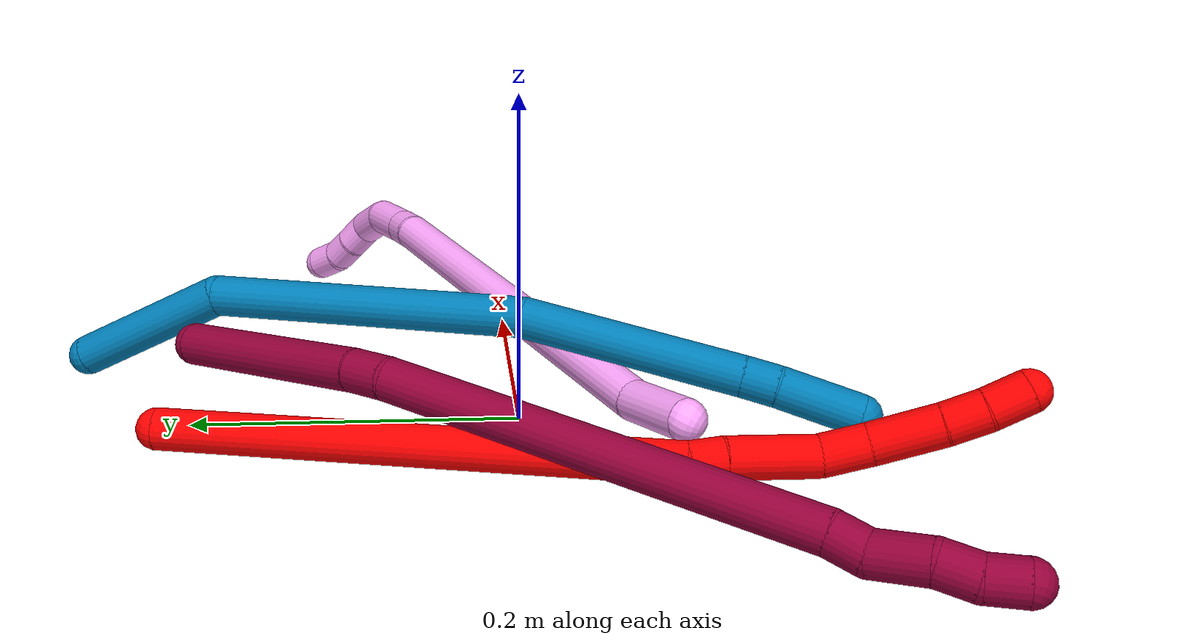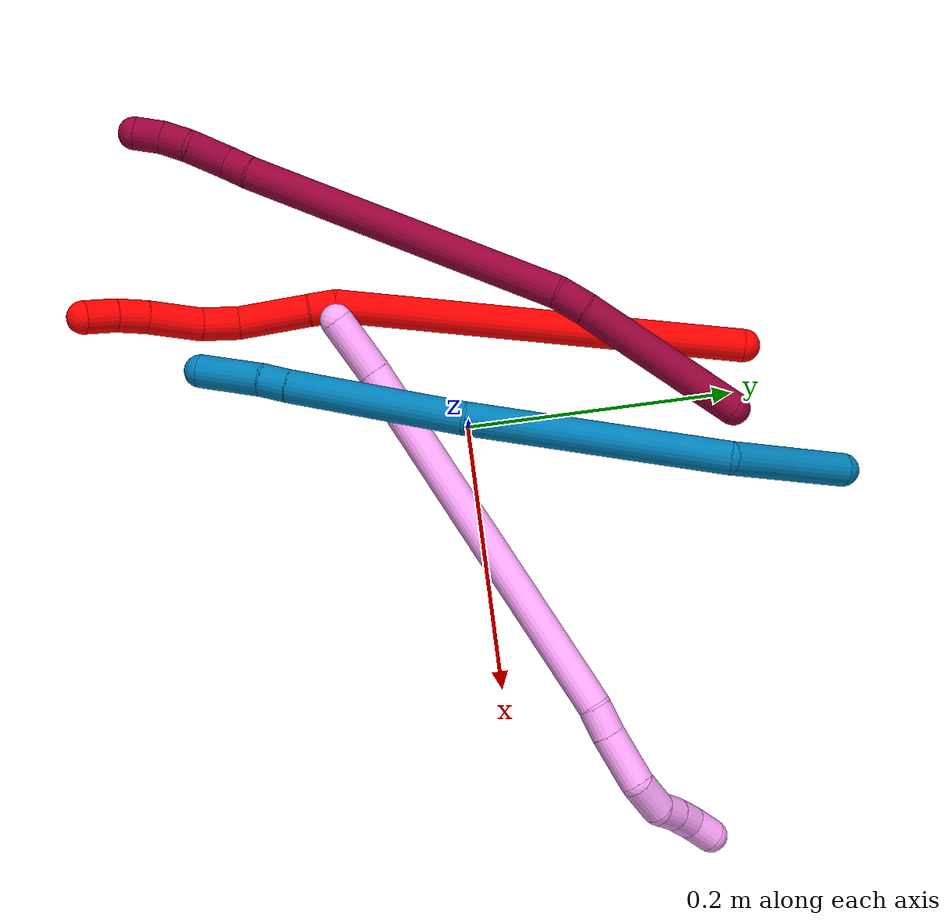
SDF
<sdf version="1.7">
 <world name="default">
  <model name="photoneo_s_sensor">
   <static>1</static>
   <pose>0 0 2 1.57079 1.57079 3.14159</pose>
   <link name="link">
    <inertial><mass>0.1</mass></inertial>
    <sensor name="sensor" type="depth">
     <update_rate>30</update_rate>
     <camera>
      <horizontal_fov>1.22</horizontal_fov>
      <image><width>1920</width><height>1200</height><format>B8G8R8</format></image>
      <clip><near>0.1</near><far>4</far></clip>
      <depth_camera><output>points</output></depth_camera>
     </camera>
     <plugin name="camera_plugin" filename="libgazebo_ros_depth_camera.so">
      <baseline>0.2</baseline>
      <alwaysOn>1</alwaysOn>
      <updateRate>0.0</updateRate>
      <cameraName>camera_ir</cameraName>
      <imageTopicName>/camera/color/image_raw</imageTopicName>
      <cameraInfoTopicName>/camera/color/camera_info</cameraInfoTopicName>
      <depthImageTopicName>/camera/depth/image_raw</depthImageTopicName>
      <depthImageCameraInfoTopicName>/camera/depth/camera_info</depthImageCameraInfoTopicName>
      <pointCloudTopicName>/camera/depth/points</pointCloudTopicName>
      <frameName>fr_optical</frameName>
      <pointCloudCutoff>0.1</pointCloudCutoff>
      <pointCloudCutoffMax>2.0</pointCloudCutoffMax>
      <distortionK1>0</distortionK1>
      <distortionK2>0</distortionK2>
      <distortionK3>0</distortionK3>
      <distortionT1>0</distortionT1>
      <distortionT2>0</distortionT2>
      <CxPrime>0</CxPrime>
      <Cx>0</Cx>
      <Cy>0</Cy>
      <focalLength>0</focalLength>
      <hackBaseline>0</hackBaseline>
     </plugin>
    </sensor>
   </link>
  </model>
  <model name="bin">
   <static>1</static>
   <link name="bottom">
    <collision name="collision-bottom">
     <pose>0 0 -0.01 0 -0 0</pose>
     <geometry><box><size>0.8 0.6 0.02</size></box></geometry>
     <surface>
      <friction><ode><mu>100</mu><mu2>100</mu2></ode></friction>
      <contact><collide_bitmask>65535</collide_bitmask></contact>
     </surface>
    </collision>
   </link>
   <link name="west_wall">
    <collision name="collision-west_wall">
     <pose>-0.41 0 0.1 0 -0 0</pose>
     <geometry><box><size>0.02 0.6 0.2</size></box></geometry>
     <surface>
      <friction><ode><mu>100</mu><mu2>100</mu2></ode></friction>
      <contact><collide_bitmask>65535</collide_bitmask></contact>
     </surface>
    </collision>
   </link>
   <link name="east_wall">
    <collision name="collision-east_wall">
     <pose>0.41 0 0.1 0 -0 0</pose>
     <geometry><box><size>0.02 0.6 0.2</size></box></geometry>
     <surface>
      <friction><ode><mu>100</mu><mu2>100</mu2></ode></friction>
      <contact><collide_bitmask>65535</collide_bitmask></contact>
     </surface>
    </collision>
   </link>
   <link name="south_wall">
    <collision name="collision-south_wall">
     <pose>0 -0.31 0.1 0 -0 0</pose>
     <geometry><box><size>0.8 0.02 0.2</size></box></geometry>
     <surface>
      <friction><ode><mu>100</mu><mu2>100</mu2></ode></friction>
      <contact><collide_bitmask>65535</collide_bitmask></contact>
     </surface>
    </collision>
   </link>
   <link name="north_wall">
    <collision name="collision-north_wall">
     <pose>0 0.31 0.1 0 -0 0</pose>
     <geometry><box><size>0.8 0.02 0.2</size></box></geometry>
     <surface>
      <friction><ode><mu>100</mu><mu2>100</mu2></ode></friction>
      <contact><collide_bitmask>65535</collide_bitmask></contact>
     </surface>
    </collision>
   </link>
  </model>
  <model name="2">
   <static>0</static>
   <link name="2">
    <collision name="collision-cylinder-e_1_1_4">
     <pose>-0.011529 -0.083276 0.1289 0.573593 -0.074985 -0.022125</pose>
     <geometry><cylinder><radius>0.0125</radius><length>0.307785</length></cylinder></geometry>
     <surface>
      <friction><ode><mu>1.16</mu><mu2>1.16</mu2><slip1>0</slip1><slip2>0</slip2></ode></friction>
      <contact><ode><kp>1e+06</kp><kd>1</kd><max_vel>0</max_vel><min_depth>0.001</min_depth></ode></contact>
     </surface>
    </collision>
    <visual name="visual-cylinder-e_1_1_4">
     <pose>-0.011529 -0.083276 0.1289 0.573593 -0.074985 -0.022125</pose>
     <geometry><cylinder><radius>0.0125</radius><length>0.307785</length></cylinder></geometry>
     <material><ambient>1 0 0 1</ambient></material>
    </visual>
    <collision name="collision-cylinder-e_2_4_5">
     <pose>-0.024218 -0.174203 0.26436 0.862022 -0.114658 -0.052771</pose>
     <geometry><cylinder><radius>0.0125</radius><length>0.020292</length></cylinder></geometry>
     <surface>
      <friction><ode><mu>1.16</mu><mu2>1.16</mu2><slip1>0</slip1><slip2>0</slip2></ode></friction>
      <contact><ode><kp>1e+06</kp><kd>1</kd><max_vel>0</max_vel><min_depth>0.001</min_depth></ode></contact>
     </surface>
    </collision>
    <visual name="visual-cylinder-e_2_4_5">
     <pose>-0.024218 -0.174203 0.26436 0.862022 -0.114658 -0.052771</pose>
     <geometry><cylinder><radius>0.0125</radius><length>0.020292</length></cylinder></geometry>
     <material><ambient>1 0 0 1</ambient></material>
    </visual>
    <collision name="collision-cylinder-e_3_5_6">
     <pose>-0.031299 -0.200686 0.288983 0.806259 -0.223081 -0.095465</pose>
     <geometry><cylinder><radius>0.0125</radius><length>0.053513</length></cylinder></geometry>
     <surface>
      <friction><ode><mu>1.16</mu><mu2>1.16</mu2><slip1>0</slip1><slip2>0</slip2></ode></friction>
      <contact><ode><kp>1e+06</kp><kd>1</kd><max_vel>0</max_vel><min_depth>0.001</min_depth></ode></contact>
     </surface>
    </collision>
    <visual name="visual-cylinder-e_3_5_6">
     <pose>-0.031299 -0.200686 0.288983 0.806259 -0.223081 -0.095465</pose>
     <geometry><cylinder><radius>0.0125</radius><length>0.053513</length></cylinder></geometry>
     <material><ambient>1 0 0 1</ambient></material>
    </visual>
    <collision name="collision-cylinder-e_4_6_7">
     <pose>-0.036071 -0.230072 0.31674 0.82777 0.079874 0.0351</pose>
     <geometry><cylinder><radius>0.0125</radius><length>0.028755</length></cylinder></geometry>
     <surface>
      <friction><ode><mu>1.16</mu><mu2>1.16</mu2><slip1>0</slip1><slip2>0</slip2></ode></friction>
      <contact><ode><kp>1e+06</kp><kd>1</kd><max_vel>0</max_vel><min_depth>0.001</min_depth></ode></contact>
     </surface>
    </collision>
    <visual name="visual-cylinder-e_4_6_7">
     <pose>-0.036071 -0.230072 0.31674 0.82777 0.079874 0.0351</pose>
     <geometry><cylinder><radius>0.0125</radius><length>0.028755</length></cylinder></geometry>
     <material><ambient>1 0 0 1</ambient></material>
    </visual>
    <collision name="collision-cylinder-e_5_7_8">
     <pose>-0.02987 -0.254116 0.341417 0.733045 0.245627 0.094695</pose>
     <geometry><cylinder><radius>0.0125</radius><length>0.041565</length></cylinder></geometry>
     <surface>
      <friction><ode><mu>1.16</mu><mu2>1.16</mu2><slip1>0</slip1><slip2>0</slip2></ode></friction>
      <contact><ode><kp>1e+06</kp><kd>1</kd><max_vel>0</max_vel><min_depth>0.001</min_depth></ode></contact>
     </surface>
    </collision>
    <visual name="visual-cylinder-e_5_7_8">
     <pose>-0.02987 -0.254116 0.341417 0.733045 0.245627 0.094695</pose>
     <geometry><cylinder><radius>0.0125</radius><length>0.041565</length></cylinder></geometry>
     <material><ambient>1 0 0 1</ambient></material>
    </visual>
    <collision name="collision-cylinder-e_6_8_9">
     <pose>-0.02197 -0.276012 0.364135 0.826941 0.24418 0.107569</pose>
     <geometry><cylinder><radius>0.0125</radius><length>0.02355</length></cylinder></geometry>
     <surface>
      <friction><ode><mu>1.16</mu><mu2>1.16</mu2><slip1>0</slip1><slip2>0</slip2></ode></friction>
      <contact><ode><kp>1e+06</kp><kd>1</kd><max_vel>0</max_vel><min_depth>0.001</min_depth></ode></contact>
     </surface>
    </collision>
    <visual name="visual-cylinder-e_6_8_9">
     <pose>-0.02197 -0.276012 0.364135 0.826941 0.24418 0.107569</pose>
     <geometry><cylinder><radius>0.0125</radius><length>0.02355</length></cylinder></geometry>
     <material><ambient>1 0 0 1</ambient></material>
    </visual>
    <collision name="collision-cylinder-e_7_9_2">
     <pose>-0.016371 -0.294197 0.378755 0.957333 0.226179 0.117735</pose>
     <geometry><cylinder><radius>0.0125</radius><length>0.02454</length></cylinder></geometry>
     <surface>
      <friction><ode><mu>1.16</mu><mu2>1.16</mu2><slip1>0</slip1><slip2>0</slip2></ode></friction>
      <contact><ode><kp>1e+06</kp><kd>1</kd><max_vel>0</max_vel><min_depth>0.001</min_depth></ode></contact>
     </surface>
    </collision>
    <visual name="visual-cylinder-e_7_9_2">
     <pose>-0.016371 -0.294197 0.378755 0.957333 0.226179 0.117735</pose>
     <geometry><cylinder><radius>0.0125</radius><length>0.02454</length></cylinder></geometry>
     <material><ambient>1 0 0 1</ambient></material>
    </visual>
    <collision name="collision-sphere-2">
     <pose>-0.01362 -0.303974 0.385639 0 -0 0</pose>
     <geometry><sphere><radius>0.0125</radius></sphere></geometry>
     <surface>
      <friction><ode><mu>1.16</mu><mu2>1.16</mu2><slip1>0</slip1><slip2>0</slip2></ode></friction>
      <contact><ode><kp>1e+06</kp><kd>1</kd><max_vel>0</max_vel><min_depth>0.001</min_depth></ode></contact>
     </surface>
    </collision>
    <visual name="visual-sphere-2">
     <pose>-0.01362 -0.303974 0.385639 0 -0 0</pose>
     <geometry><sphere><radius>0.0125</radius></sphere></geometry>
     <material><ambient>1 0 0 1</ambient></material>
    </visual>
    <collision name="collision-sphere-9">
     <pose>-0.019123 -0.28442 0.371872 0 -0 0</pose>
     <geometry><sphere><radius>0.0125</radius></sphere></geometry>
     <surface>
      <friction><ode><mu>1.16</mu><mu2>1.16</mu2><slip1>0</slip1><slip2>0</slip2></ode></friction>
      <contact><ode><kp>1e+06</kp><kd>1</kd><max_vel>0</max_vel><min_depth>0.001</min_depth></ode></contact>
     </surface>
    </collision>
    <visual name="visual-sphere-9">
     <pose>-0.019123 -0.28442 0.371872 0 -0 0</pose>
     <geometry><sphere><radius>0.0125</radius></sphere></geometry>
     <material><ambient>1 0 0 1</ambient></material>
    </visual>
    <collision name="collision-sphere-4">
     <pose>-0.023058 -0.166551 0.2578 0 -0 0</pose>
     <geometry><sphere><radius>0.0125</radius></sphere></geometry>
     <surface>
      <friction><ode><mu>1.16</mu><mu2>1.16</mu2><slip1>0</slip1><slip2>0</slip2></ode></friction>
      <contact><ode><kp>1e+06</kp><kd>1</kd><max_vel>0</max_vel><min_depth>0.001</min_depth></ode></contact>
     </surface>
    </collision>
    <visual name="visual-sphere-4">
     <pose>-0.023058 -0.166551 0.2578 0 -0 0</pose>
     <geometry><sphere><radius>0.0125</radius></sphere></geometry>
     <material><ambient>1 0 0 1</ambient></material>
    </visual>
    <collision name="collision-sphere-1">
     <geometry><sphere><radius>0.0125</radius></sphere></geometry>
     <surface>
      <friction><ode><mu>1.16</mu><mu2>1.16</mu2><slip1>0</slip1><slip2>0</slip2></ode></friction>
      <contact><ode><kp>1e+06</kp><kd>1</kd><max_vel>0</max_vel><min_depth>0.001</min_depth></ode></contact>
     </surface>
    </collision>
    <visual name="visual-sphere-1">
     <geometry><sphere><radius>0.0125</radius></sphere></geometry>
     <material><ambient>1 0 0 1</ambient></material>
    </visual>
    <collision name="collision-sphere-8">
     <pose>-0.024816 -0.267605 0.356398 0 -0 0</pose>
     <geometry><sphere><radius>0.0125</radius></sphere></geometry>
     <surface>
      <friction><ode><mu>1.16</mu><mu2>1.16</mu2><slip1>0</slip1><slip2>0</slip2></ode></friction>
      <contact><ode><kp>1e+06</kp><kd>1</kd><max_vel>0</max_vel><min_depth>0.001</min_depth></ode></contact>
     </surface>
    </collision>
    <visual name="visual-sphere-8">
     <pose>-0.024816 -0.267605 0.356398 0 -0 0</pose>
     <geometry><sphere><radius>0.0125</radius></sphere></geometry>
     <material><ambient>1 0 0 1</ambient></material>
    </visual>
    <collision name="collision-sphere-5">
     <pose>-0.025379 -0.181855 0.270921 0 -0 0</pose>
     <geometry><sphere><radius>0.0125</radius></sphere></geometry>
     <surface>
      <friction><ode><mu>1.16</mu><mu2>1.16</mu2><slip1>0</slip1><slip2>0</slip2></ode></friction>
      <contact><ode><kp>1e+06</kp><kd>1</kd><max_vel>0</max_vel><min_depth>0.001</min_depth></ode></contact>
     </surface>
    </collision>
    <visual name="visual-sphere-5">
     <pose>-0.025379 -0.181855 0.270921 0 -0 0</pose>
     <geometry><sphere><radius>0.0125</radius></sphere></geometry>
     <material><ambient>1 0 0 1</ambient></material>
    </visual>
    <collision name="collision-sphere-6">
     <pose>-0.037218 -0.219518 0.307045 0 -0 0</pose>
     <geometry><sphere><radius>0.0125</radius></sphere></geometry>
     <surface>
      <friction><ode><mu>1.16</mu><mu2>1.16</mu2><slip1>0</slip1><slip2>0</slip2></ode></friction>
      <contact><ode><kp>1e+06</kp><kd>1</kd><max_vel>0</max_vel><min_depth>0.001</min_depth></ode></contact>
     </surface>
    </collision>
    <visual name="visual-sphere-6">
     <pose>-0.037218 -0.219518 0.307045 0 -0 0</pose>
     <geometry><sphere><radius>0.0125</radius></sphere></geometry>
     <material><ambient>1 0 0 1</ambient></material>
    </visual>
    <collision name="collision-sphere-7">
     <pose>-0.034924 -0.240627 0.326436 0 -0 0</pose>
     <geometry><sphere><radius>0.0125</radius></sphere></geometry>
     <surface>
      <friction><ode><mu>1.16</mu><mu2>1.16</mu2><slip1>0</slip1><slip2>0</slip2></ode></friction>
      <contact><ode><kp>1e+06</kp><kd>1</kd><max_vel>0</max_vel><min_depth>0.001</min_depth></ode></contact>
     </surface>
    </collision>
    <visual name="visual-sphere-7">
     <pose>-0.034924 -0.240627 0.326436 0 -0 0</pose>
     <geometry><sphere><radius>0.0125</radius></sphere></geometry>
     <material><ambient>1 0 0 1</ambient></material>
    </visual>
    <inertial>
     <pose>-0.017825 -0.141606 0.203342 0 -0 0</pose>
     <mass>0.5</mass>
     <inertia>
      <ixx>0.00241</ixx>
      <ixy>0</ixy>
      <ixz>0</ixz>
      <iyy>0.001997</iyy>
      <iyz>0</iyz>
      <izz>0.001557</izz>
     </inertia>
    </inertial>
   </link>
   <pose>-0.03355 0.212992 0.011556 -2.00882 -1.0654 2.75945</pose>
  </model>
  <model name="4">
   <static>0</static>
   <link name="4">
    <collision name="collision-cylinder-e_1_1_4">
     <pose>0.013045 0.009355 0.017803 -0.483834 0.575439 -0.145783</pose>
     <geometry><cylinder><radius>0.0125</radius><length>0.047943</length></cylinder></geometry>
     <surface>
      <friction><ode><mu>1.16</mu><mu2>1.16</mu2><slip1>0</slip1><slip2>0</slip2></ode></friction>
      <contact><ode><kp>1e+06</kp><kd>1</kd><max_vel>0</max_vel><min_depth>0.001</min_depth></ode></contact>
     </surface>
    </collision>
    <visual name="visual-cylinder-e_1_1_4">
     <pose>0.013045 0.009355 0.017803 -0.483834 0.575439 -0.145783</pose>
     <geometry><cylinder><radius>0.0125</radius><length>0.047943</length></cylinder></geometry>
     <material><ambient>1 0.65098 0.996078 1</ambient></material>
    </visual>
    <collision name="collision-cylinder-e_2_4_5">
     <pose>0.112357 0.047683 0.15177 -0.24442 0.624379 -0.079238</pose>
     <geometry><cylinder><radius>0.0125</radius><length>0.29513</length></cylinder></geometry>
     <surface>
      <friction><ode><mu>1.16</mu><mu2>1.16</mu2><slip1>0</slip1><slip2>0</slip2></ode></friction>
      <contact><ode><kp>1e+06</kp><kd>1</kd><max_vel>0</max_vel><min_depth>0.001</min_depth></ode></contact>
     </surface>
    </collision>
    <visual name="visual-cylinder-e_2_4_5">
     <pose>0.112357 0.047683 0.15177 -0.24442 0.624379 -0.079238</pose>
     <geometry><cylinder><radius>0.0125</radius><length>0.29513</length></cylinder></geometry>
     <material><ambient>1 0.65098 0.996078 1</ambient></material>
    </visual>
    <collision name="collision-cylinder-e_3_5_6">
     <pose>0.206387 0.080417 0.275436 -0.464875 0.74667 -0.184917</pose>
     <geometry><cylinder><radius>0.0125</radius><length>0.022865</length></cylinder></geometry>
     <surface>
      <friction><ode><mu>1.16</mu><mu2>1.16</mu2><slip1>0</slip1><slip2>0</slip2></ode></friction>
      <contact><ode><kp>1e+06</kp><kd>1</kd><max_vel>0</max_vel><min_depth>0.001</min_depth></ode></contact>
     </surface>
    </collision>
    <visual name="visual-cylinder-e_3_5_6">
     <pose>0.206387 0.080417 0.275436 -0.464875 0.74667 -0.184917</pose>
     <geometry><cylinder><radius>0.0125</radius><length>0.022865</length></cylinder></geometry>
     <material><ambient>1 0.65098 0.996078 1</ambient></material>
    </visual>
    <collision name="collision-cylinder-e_4_6_7">
     <pose>0.227115 0.090931 0.297751 -0.427641 0.672422 -0.151481</pose>
     <geometry><cylinder><radius>0.0125</radius><length>0.041623</length></cylinder></geometry>
     <surface>
      <friction><ode><mu>1.16</mu><mu2>1.16</mu2><slip1>0</slip1><slip2>0</slip2></ode></friction>
      <contact><ode><kp>1e+06</kp><kd>1</kd><max_vel>0</max_vel><min_depth>0.001</min_depth></ode></contact>
     </surface>
    </collision>
    <visual name="visual-cylinder-e_4_6_7">
     <pose>0.227115 0.090931 0.297751 -0.427641 0.672422 -0.151481</pose>
     <geometry><cylinder><radius>0.0125</radius><length>0.041623</length></cylinder></geometry>
     <material><ambient>1 0.65098 0.996078 1</ambient></material>
    </visual>
    <collision name="collision-cylinder-e_5_7_8">
     <pose>0.246563 0.108469 0.320729 -0.922954 0.447014 -0.225117</pose>
     <geometry><cylinder><radius>0.0125</radius><length>0.030003</length></cylinder></geometry>
     <surface>
      <friction><ode><mu>1.16</mu><mu2>1.16</mu2><slip1>0</slip1><slip2>0</slip2></ode></friction>
      <contact><ode><kp>1e+06</kp><kd>1</kd><max_vel>0</max_vel><min_depth>0.001</min_depth></ode></contact>
     </surface>
    </collision>
    <visual name="visual-cylinder-e_5_7_8">
     <pose>0.246563 0.108469 0.320729 -0.922954 0.447014 -0.225117</pose>
     <geometry><cylinder><radius>0.0125</radius><length>0.030003</length></cylinder></geometry>
     <material><ambient>1 0.65098 0.996078 1</ambient></material>
    </visual>
    <collision name="collision-cylinder-e_6_8_9">
     <pose>0.253145 0.128375 0.33302 -1.14578 0.009743 -0.006285</pose>
     <geometry><cylinder><radius>0.0125</radius><length>0.02002</length></cylinder></geometry>
     <surface>
      <friction><ode><mu>1.16</mu><mu2>1.16</mu2><slip1>0</slip1><slip2>0</slip2></ode></friction>
      <contact><ode><kp>1e+06</kp><kd>1</kd><max_vel>0</max_vel><min_depth>0.001</min_depth></ode></contact>
     </surface>
    </collision>
    <visual name="visual-cylinder-e_6_8_9">
     <pose>0.253145 0.128375 0.33302 -1.14578 0.009743 -0.006285</pose>
     <geometry><cylinder><radius>0.0125</radius><length>0.02002</length></cylinder></geometry>
     <material><ambient>1 0.65098 0.996078 1</ambient></material>
    </visual>
    <collision name="collision-cylinder-e_7_9_10">
     <pose>0.254466 0.146401 0.341674 -1.10058 0.121828 -0.0748</pose>
     <geometry><cylinder><radius>0.0125</radius><length>0.020132</length></cylinder></geometry>
     <surface>
      <friction><ode><mu>1.16</mu><mu2>1.16</mu2><slip1>0</slip1><slip2>0</slip2></ode></friction>
      <contact><ode><kp>1e+06</kp><kd>1</kd><max_vel>0</max_vel><min_depth>0.001</min_depth></ode></contact>
     </surface>
    </collision>
    <visual name="visual-cylinder-e_7_9_10">
     <pose>0.254466 0.146401 0.341674 -1.10058 0.121828 -0.0748</pose>
     <geometry><cylinder><radius>0.0125</radius><length>0.020132</length></cylinder></geometry>
     <material><ambient>1 0.65098 0.996078 1</ambient></material>
    </visual>
    <collision name="collision-cylinder-e_8_10_2">
     <pose>0.258034 0.163354 0.353544 -0.831029 0.211995 -0.093816</pose>
     <geometry><cylinder><radius>0.0125</radius><length>0.022284</length></cylinder></geometry>
     <surface>
      <friction><ode><mu>1.16</mu><mu2>1.16</mu2><slip1>0</slip1><slip2>0</slip2></ode></friction>
      <contact><ode><kp>1e+06</kp><kd>1</kd><max_vel>0</max_vel><min_depth>0.001</min_depth></ode></contact>
     </surface>
    </collision>
    <visual name="visual-cylinder-e_8_10_2">
     <pose>0.258034 0.163354 0.353544 -0.831029 0.211995 -0.093816</pose>
     <geometry><cylinder><radius>0.0125</radius><length>0.022284</length></cylinder></geometry>
     <material><ambient>1 0.65098 0.996078 1</ambient></material>
    </visual>
    <collision name="collision-sphere-2">
     <pose>0.260378 0.171399 0.360887 0 -0 0</pose>
     <geometry><sphere><radius>0.0125</radius></sphere></geometry>
     <surface>
      <friction><ode><mu>1.16</mu><mu2>1.16</mu2><slip1>0</slip1><slip2>0</slip2></ode></friction>
      <contact><ode><kp>1e+06</kp><kd>1</kd><max_vel>0</max_vel><min_depth>0.001</min_depth></ode></contact>
     </surface>
    </collision>
    <visual name="visual-sphere-2">
     <pose>0.260378 0.171399 0.360887 0 -0 0</pose>
     <geometry><sphere><radius>0.0125</radius></sphere></geometry>
     <material><ambient>1 0.65098 0.996078 1</ambient></material>
    </visual>
    <collision name="collision-sphere-10">
     <pose>0.255689 0.155308 0.346201 0 -0 0</pose>
     <geometry><sphere><radius>0.0125</radius></sphere></geometry>
     <surface>
      <friction><ode><mu>1.16</mu><mu2>1.16</mu2><slip1>0</slip1><slip2>0</slip2></ode></friction>
      <contact><ode><kp>1e+06</kp><kd>1</kd><max_vel>0</max_vel><min_depth>0.001</min_depth></ode></contact>
     </surface>
    </collision>
    <visual name="visual-sphere-10">
     <pose>0.255689 0.155308 0.346201 0 -0 0</pose>
     <geometry><sphere><radius>0.0125</radius></sphere></geometry>
     <material><ambient>1 0.65098 0.996078 1</ambient></material>
    </visual>
    <collision name="collision-sphere-9">
     <pose>0.253243 0.137494 0.337147 0 -0 0</pose>
     <geometry><sphere><radius>0.0125</radius></sphere></geometry>
     <surface>
      <friction><ode><mu>1.16</mu><mu2>1.16</mu2><slip1>0</slip1><slip2>0</slip2></ode></friction>
      <contact><ode><kp>1e+06</kp><kd>1</kd><max_vel>0</max_vel><min_depth>0.001</min_depth></ode></contact>
     </surface>
    </collision>
    <visual name="visual-sphere-9">
     <pose>0.253243 0.137494 0.337147 0 -0 0</pose>
     <geometry><sphere><radius>0.0125</radius></sphere></geometry>
     <material><ambient>1 0.65098 0.996078 1</ambient></material>
    </visual>
    <collision name="collision-sphere-4">
     <pose>0.026091 0.01871 0.035606 0 -0 0</pose>
     <geometry><sphere><radius>0.0125</radius></sphere></geometry>
     <surface>
      <friction><ode><mu>1.16</mu><mu2>1.16</mu2><slip1>0</slip1><slip2>0</slip2></ode></friction>
      <contact><ode><kp>1e+06</kp><kd>1</kd><max_vel>0</max_vel><min_depth>0.001</min_depth></ode></contact>
     </surface>
    </collision>
    <visual name="visual-sphere-4">
     <pose>0.026091 0.01871 0.035606 0 -0 0</pose>
     <geometry><sphere><radius>0.0125</radius></sphere></geometry>
     <material><ambient>1 0.65098 0.996078 1</ambient></material>
    </visual>
    <collision name="collision-sphere-1">
     <geometry><sphere><radius>0.0125</radius></sphere></geometry>
     <surface>
      <friction><ode><mu>1.16</mu><mu2>1.16</mu2><slip1>0</slip1><slip2>0</slip2></ode></friction>
      <contact><ode><kp>1e+06</kp><kd>1</kd><max_vel>0</max_vel><min_depth>0.001</min_depth></ode></contact>
     </surface>
    </collision>
    <visual name="visual-sphere-1">
     <geometry><sphere><radius>0.0125</radius></sphere></geometry>
     <material><ambient>1 0.65098 0.996078 1</ambient></material>
    </visual>
    <collision name="collision-sphere-8">
     <pose>0.253048 0.119256 0.328893 0 -0 0</pose>
     <geometry><sphere><radius>0.0125</radius></sphere></geometry>
     <surface>
      <friction><ode><mu>1.16</mu><mu2>1.16</mu2><slip1>0</slip1><slip2>0</slip2></ode></friction>
      <contact><ode><kp>1e+06</kp><kd>1</kd><max_vel>0</max_vel><min_depth>0.001</min_depth></ode></contact>
     </surface>
    </collision>
    <visual name="visual-sphere-8">
     <pose>0.253048 0.119256 0.328893 0 -0 0</pose>
     <geometry><sphere><radius>0.0125</radius></sphere></geometry>
     <material><ambient>1 0.65098 0.996078 1</ambient></material>
    </visual>
    <collision name="collision-sphere-5">
     <pose>0.198622 0.076655 0.267935 0 -0 0</pose>
     <geometry><sphere><radius>0.0125</radius></sphere></geometry>
     <surface>
      <friction><ode><mu>1.16</mu><mu2>1.16</mu2><slip1>0</slip1><slip2>0</slip2></ode></friction>
      <contact><ode><kp>1e+06</kp><kd>1</kd><max_vel>0</max_vel><min_depth>0.001</min_depth></ode></contact>
     </surface>
    </collision>
    <visual name="visual-sphere-5">
     <pose>0.198622 0.076655 0.267935 0 -0 0</pose>
     <geometry><sphere><radius>0.0125</radius></sphere></geometry>
     <material><ambient>1 0.65098 0.996078 1</ambient></material>
    </visual>
    <collision name="collision-sphere-6">
     <pose>0.214152 0.084178 0.282936 0 -0 0</pose>
     <geometry><sphere><radius>0.0125</radius></sphere></geometry>
     <surface>
      <friction><ode><mu>1.16</mu><mu2>1.16</mu2><slip1>0</slip1><slip2>0</slip2></ode></friction>
      <contact><ode><kp>1e+06</kp><kd>1</kd><max_vel>0</max_vel><min_depth>0.001</min_depth></ode></contact>
     </surface>
    </collision>
    <visual name="visual-sphere-6">
     <pose>0.214152 0.084178 0.282936 0 -0 0</pose>
     <geometry><sphere><radius>0.0125</radius></sphere></geometry>
     <material><ambient>1 0.65098 0.996078 1</ambient></material>
    </visual>
    <collision name="collision-sphere-7">
     <pose>0.240078 0.097683 0.312566 0 -0 0</pose>
     <geometry><sphere><radius>0.0125</radius></sphere></geometry>
     <surface>
      <friction><ode><mu>1.16</mu><mu2>1.16</mu2><slip1>0</slip1><slip2>0</slip2></ode></friction>
      <contact><ode><kp>1e+06</kp><kd>1</kd><max_vel>0</max_vel><min_depth>0.001</min_depth></ode></contact>
     </surface>
    </collision>
    <visual name="visual-sphere-7">
     <pose>0.240078 0.097683 0.312566 0 -0 0</pose>
     <geometry><sphere><radius>0.0125</radius></sphere></geometry>
     <material><ambient>1 0.65098 0.996078 1</ambient></material>
    </visual>
    <inertial>
     <pose>0.142592 0.065113 0.190767 0 -0 0</pose>
     <mass>0.5</mass>
     <inertia>
      <ixx>0.001645</ixx>
      <ixy>0</ixy>
      <ixz>0</ixz>
      <iyy>0.002003</iyy>
      <iyz>0</iyz>
      <izz>-0.001682</izz>
     </inertia>
    </inertial>
   </link>
   <pose>-0.090385 -0.086711 0.032087 -1.20314 -0.036956 -0.49263</pose>
  </model>
  <model name="8">
   <static>0</static>
   <link name="8">
    <collision name="collision-cylinder-e_1_1_4">
     <pose>-0.019337 -0.062542 0.007981 1.44387 -0.297591 -0.262462</pose>
     <geometry><cylinder><radius>0.0125</radius><length>0.131895</length></cylinder></geometry>
     <surface>
      <friction><ode><mu>1.16</mu><mu2>1.16</mu2><slip1>0</slip1><slip2>0</slip2></ode></friction>
      <contact><ode><kp>1e+06</kp><kd>1</kd><max_vel>0</max_vel><min_depth>0.001</min_depth></ode></contact>
     </surface>
    </collision>
    <visual name="visual-cylinder-e_1_1_4">
     <pose>-0.019337 -0.062542 0.007981 1.44387 -0.297591 -0.262462</pose>
     <geometry><cylinder><radius>0.0125</radius><length>0.131895</length></cylinder></geometry>
     <material><ambient>0.584314 0 0.227451 1</ambient></material>
    </visual>
    <collision name="collision-cylinder-e_2_4_5">
     <pose>-0.043222 -0.13581 0.017832 1.3983 -0.395671 -0.333964</pose>
     <geometry><cylinder><radius>0.0125</radius><length>0.023602</length></cylinder></geometry>
     <surface>
      <friction><ode><mu>1.16</mu><mu2>1.16</mu2><slip1>0</slip1><slip2>0</slip2></ode></friction>
      <contact><ode><kp>1e+06</kp><kd>1</kd><max_vel>0</max_vel><min_depth>0.001</min_depth></ode></contact>
     </surface>
    </collision>
    <visual name="visual-cylinder-e_2_4_5">
     <pose>-0.043222 -0.13581 0.017832 1.3983 -0.395671 -0.333964</pose>
     <geometry><cylinder><radius>0.0125</radius><length>0.023602</length></cylinder></geometry>
     <material><ambient>0.584314 0 0.227451 1</ambient></material>
    </visual>
    <collision name="collision-cylinder-e_3_5_6">
     <pose>-0.118779 -0.246875 0.041199 1.35973 -0.605328 -0.494548</pose>
     <geometry><cylinder><radius>0.0125</radius><length>0.249575</length></cylinder></geometry>
     <surface>
      <friction><ode><mu>1.16</mu><mu2>1.16</mu2><slip1>0</slip1><slip2>0</slip2></ode></friction>
      <contact><ode><kp>1e+06</kp><kd>1</kd><max_vel>0</max_vel><min_depth>0.001</min_depth></ode></contact>
     </surface>
    </collision>
    <visual name="visual-cylinder-e_3_5_6">
     <pose>-0.118779 -0.246875 0.041199 1.35973 -0.605328 -0.494548</pose>
     <geometry><cylinder><radius>0.0125</radius><length>0.249575</length></cylinder></geometry>
     <material><ambient>0.584314 0 0.227451 1</ambient></material>
    </visual>
    <collision name="collision-cylinder-e_4_6_7">
     <pose>-0.195686 -0.354746 0.065944 1.16388 -0.623431 -0.417821</pose>
     <geometry><cylinder><radius>0.0125</radius><length>0.020208</length></cylinder></geometry>
     <surface>
      <friction><ode><mu>1.16</mu><mu2>1.16</mu2><slip1>0</slip1><slip2>0</slip2></ode></friction>
      <contact><ode><kp>1e+06</kp><kd>1</kd><max_vel>0</max_vel><min_depth>0.001</min_depth></ode></contact>
     </surface>
    </collision>
    <visual name="visual-cylinder-e_4_6_7">
     <pose>-0.195686 -0.354746 0.065944 1.16388 -0.623431 -0.417821</pose>
     <geometry><cylinder><radius>0.0125</radius><length>0.020208</length></cylinder></geometry>
     <material><ambient>0.584314 0 0.227451 1</ambient></material>
    </visual>
    <collision name="collision-cylinder-e_5_7_8">
     <pose>-0.208377 -0.37665 0.069248 1.56684 -0.441514 -0.439827</pose>
     <geometry><cylinder><radius>0.0125</radius><length>0.03179</length></cylinder></geometry>
     <surface>
      <friction><ode><mu>1.16</mu><mu2>1.16</mu2><slip1>0</slip1><slip2>0</slip2></ode></friction>
      <contact><ode><kp>1e+06</kp><kd>1</kd><max_vel>0</max_vel><min_depth>0.001</min_depth></ode></contact>
     </surface>
    </collision>
    <visual name="visual-cylinder-e_5_7_8">
     <pose>-0.208377 -0.37665 0.069248 1.56684 -0.441514 -0.439827</pose>
     <geometry><cylinder><radius>0.0125</radius><length>0.03179</length></cylinder></geometry>
     <material><ambient>0.584314 0 0.227451 1</ambient></material>
    </visual>
    <collision name="collision-cylinder-e_6_8_9">
     <pose>-0.221758 -0.399305 0.071025 1.36596 -0.6617 -0.545</pose>
     <geometry><cylinder><radius>0.0125</radius><length>0.021448</length></cylinder></geometry>
     <surface>
      <friction><ode><mu>1.16</mu><mu2>1.16</mu2><slip1>0</slip1><slip2>0</slip2></ode></friction>
      <contact><ode><kp>1e+06</kp><kd>1</kd><max_vel>0</max_vel><min_depth>0.001</min_depth></ode></contact>
     </surface>
    </collision>
    <visual name="visual-cylinder-e_6_8_9">
     <pose>-0.221758 -0.399305 0.071025 1.36596 -0.6617 -0.545</pose>
     <geometry><cylinder><radius>0.0125</radius><length>0.021448</length></cylinder></geometry>
     <material><ambient>0.584314 0 0.227451 1</ambient></material>
    </visual>
    <collision name="collision-cylinder-e_7_9_2">
     <pose>-0.235083 -0.415881 0.071631 1.70452 -0.677749 -0.766287</pose>
     <geometry><cylinder><radius>0.0125</radius><length>0.021483</length></cylinder></geometry>
     <surface>
      <friction><ode><mu>1.16</mu><mu2>1.16</mu2><slip1>0</slip1><slip2>0</slip2></ode></friction>
      <contact><ode><kp>1e+06</kp><kd>1</kd><max_vel>0</max_vel><min_depth>0.001</min_depth></ode></contact>
     </surface>
    </collision>
    <visual name="visual-cylinder-e_7_9_2">
     <pose>-0.235083 -0.415881 0.071631 1.70452 -0.677749 -0.766287</pose>
     <geometry><cylinder><radius>0.0125</radius><length>0.021483</length></cylinder></geometry>
     <material><ambient>0.584314 0 0.227451 1</ambient></material>
    </visual>
    <collision name="collision-sphere-2">
     <pose>-0.241818 -0.424174 0.070515 0 -0 0</pose>
     <geometry><sphere><radius>0.0125</radius></sphere></geometry>
     <surface>
      <friction><ode><mu>1.16</mu><mu2>1.16</mu2><slip1>0</slip1><slip2>0</slip2></ode></friction>
      <contact><ode><kp>1e+06</kp><kd>1</kd><max_vel>0</max_vel><min_depth>0.001</min_depth></ode></contact>
     </surface>
    </collision>
    <visual name="visual-sphere-2">
     <pose>-0.241818 -0.424174 0.070515 0 -0 0</pose>
     <geometry><sphere><radius>0.0125</radius></sphere></geometry>
     <material><ambient>0.584314 0 0.227451 1</ambient></material>
    </visual>
    <collision name="collision-sphere-9">
     <pose>-0.228348 -0.407588 0.072746 0 -0 0</pose>
     <geometry><sphere><radius>0.0125</radius></sphere></geometry>
     <surface>
      <friction><ode><mu>1.16</mu><mu2>1.16</mu2><slip1>0</slip1><slip2>0</slip2></ode></friction>
      <contact><ode><kp>1e+06</kp><kd>1</kd><max_vel>0</max_vel><min_depth>0.001</min_depth></ode></contact>
     </surface>
    </collision>
    <visual name="visual-sphere-9">
     <pose>-0.228348 -0.407588 0.072746 0 -0 0</pose>
     <geometry><sphere><radius>0.0125</radius></sphere></geometry>
     <material><ambient>0.584314 0 0.227451 1</ambient></material>
    </visual>
    <collision name="collision-sphere-4">
     <pose>-0.038674 -0.125083 0.015963 0 -0 0</pose>
     <geometry><sphere><radius>0.0125</radius></sphere></geometry>
     <surface>
      <friction><ode><mu>1.16</mu><mu2>1.16</mu2><slip1>0</slip1><slip2>0</slip2></ode></friction>
      <contact><ode><kp>1e+06</kp><kd>1</kd><max_vel>0</max_vel><min_depth>0.001</min_depth></ode></contact>
     </surface>
    </collision>
    <visual name="visual-sphere-4">
     <pose>-0.038674 -0.125083 0.015963 0 -0 0</pose>
     <geometry><sphere><radius>0.0125</radius></sphere></geometry>
     <material><ambient>0.584314 0 0.227451 1</ambient></material>
    </visual>
    <collision name="collision-sphere-1">
     <geometry><sphere><radius>0.0125</radius></sphere></geometry>
     <surface>
      <friction><ode><mu>1.16</mu><mu2>1.16</mu2><slip1>0</slip1><slip2>0</slip2></ode></friction>
      <contact><ode><kp>1e+06</kp><kd>1</kd><max_vel>0</max_vel><min_depth>0.001</min_depth></ode></contact>
     </surface>
    </collision>
    <visual name="visual-sphere-1">
     <geometry><sphere><radius>0.0125</radius></sphere></geometry>
     <material><ambient>0.584314 0 0.227451 1</ambient></material>
    </visual>
    <collision name="collision-sphere-8">
     <pose>-0.215169 -0.391021 0.069305 0 -0 0</pose>
     <geometry><sphere><radius>0.0125</radius></sphere></geometry>
     <surface>
      <friction><ode><mu>1.16</mu><mu2>1.16</mu2><slip1>0</slip1><slip2>0</slip2></ode></friction>
      <contact><ode><kp>1e+06</kp><kd>1</kd><max_vel>0</max_vel><min_depth>0.001</min_depth></ode></contact>
     </surface>
    </collision>
    <visual name="visual-sphere-8">
     <pose>-0.215169 -0.391021 0.069305 0 -0 0</pose>
     <geometry><sphere><radius>0.0125</radius></sphere></geometry>
     <material><ambient>0.584314 0 0.227451 1</ambient></material>
    </visual>
    <collision name="collision-sphere-5">
     <pose>-0.047771 -0.146538 0.019701 0 -0 0</pose>
     <geometry><sphere><radius>0.0125</radius></sphere></geometry>
     <surface>
      <friction><ode><mu>1.16</mu><mu2>1.16</mu2><slip1>0</slip1><slip2>0</slip2></ode></friction>
      <contact><ode><kp>1e+06</kp><kd>1</kd><max_vel>0</max_vel><min_depth>0.001</min_depth></ode></contact>
     </surface>
    </collision>
    <visual name="visual-sphere-5">
     <pose>-0.047771 -0.146538 0.019701 0 -0 0</pose>
     <geometry><sphere><radius>0.0125</radius></sphere></geometry>
     <material><ambient>0.584314 0 0.227451 1</ambient></material>
    </visual>
    <collision name="collision-sphere-6">
     <pose>-0.189787 -0.347213 0.062697 0 -0 0</pose>
     <geometry><sphere><radius>0.0125</radius></sphere></geometry>
     <surface>
      <friction><ode><mu>1.16</mu><mu2>1.16</mu2><slip1>0</slip1><slip2>0</slip2></ode></friction>
      <contact><ode><kp>1e+06</kp><kd>1</kd><max_vel>0</max_vel><min_depth>0.001</min_depth></ode></contact>
     </surface>
    </collision>
    <visual name="visual-sphere-6">
     <pose>-0.189787 -0.347213 0.062697 0 -0 0</pose>
     <geometry><sphere><radius>0.0125</radius></sphere></geometry>
     <material><ambient>0.584314 0 0.227451 1</ambient></material>
    </visual>
    <collision name="collision-sphere-7">
     <pose>-0.201585 -0.36228 0.069191 0 -0 0</pose>
     <geometry><sphere><radius>0.0125</radius></sphere></geometry>
     <surface>
      <friction><ode><mu>1.16</mu><mu2>1.16</mu2><slip1>0</slip1><slip2>0</slip2></ode></friction>
      <contact><ode><kp>1e+06</kp><kd>1</kd><max_vel>0</max_vel><min_depth>0.001</min_depth></ode></contact>
     </surface>
    </collision>
    <visual name="visual-sphere-7">
     <pose>-0.201585 -0.36228 0.069191 0 -0 0</pose>
     <geometry><sphere><radius>0.0125</radius></sphere></geometry>
     <material><ambient>0.584314 0 0.227451 1</ambient></material>
    </visual>
    <inertial>
     <pose>-0.1072 -0.219418 0.036704 0 -0 0</pose>
     <mass>0.5</mass>
     <inertia>
      <ixx>0.000553</ixx>
      <ixy>0</ixy>
      <ixz>0</ixz>
      <iyy>3.2e-05</iyy>
      <iyz>0</iyz>
      <izz>0.002056</izz>
     </inertia>
    </inertial>
   </link>
   <pose>0.01287 0.195118 0.047769 -2.6915 -0.599399 1.99896</pose>
  </model>
  <model name="9">
   <static>0</static>
   <link name="9">
    <collision name="collision-cylinder-e_1_1_4">
     <pose>-0.009301 -0.047245 -0.011762 1.81479 -0.18877 -0.241072</pose>
     <geometry><cylinder><radius>0.0125</radius><length>0.099134</length></cylinder></geometry>
     <surface>
      <friction><ode><mu>1.16</mu><mu2>1.16</mu2><slip1>0</slip1><slip2>0</slip2></ode></friction>
      <contact><ode><kp>1e+06</kp><kd>1</kd><max_vel>0</max_vel><min_depth>0.001</min_depth></ode></contact>
     </surface>
    </collision>
    <visual name="visual-cylinder-e_1_1_4">
     <pose>-0.009301 -0.047245 -0.011762 1.81479 -0.18877 -0.241072</pose>
     <geometry><cylinder><radius>0.0125</radius><length>0.099134</length></cylinder></geometry>
     <material><ambient>0 0.490196 0.709804 1</ambient></material>
    </visual>
    <collision name="collision-cylinder-e_2_4_5">
     <pose>-0.022514 -0.190148 -0.003612 1.36558 -0.040008 -0.03254</pose>
     <geometry><cylinder><radius>0.0125</radius><length>0.195575</length></cylinder></geometry>
     <surface>
      <friction><ode><mu>1.16</mu><mu2>1.16</mu2><slip1>0</slip1><slip2>0</slip2></ode></friction>
      <contact><ode><kp>1e+06</kp><kd>1</kd><max_vel>0</max_vel><min_depth>0.001</min_depth></ode></contact>
     </surface>
    </collision>
    <visual name="visual-cylinder-e_2_4_5">
     <pose>-0.022514 -0.190148 -0.003612 1.36558 -0.040008 -0.03254</pose>
     <geometry><cylinder><radius>0.0125</radius><length>0.195575</length></cylinder></geometry>
     <material><ambient>0 0.490196 0.709804 1</ambient></material>
    </visual>
    <collision name="collision-cylinder-e_3_5_6">
     <pose>-0.023701 -0.348592 0.041036 1.19547 0.04035 0.027473</pose>
     <geometry><cylinder><radius>0.0125</radius><length>0.135076</length></cylinder></geometry>
     <surface>
      <friction><ode><mu>1.16</mu><mu2>1.16</mu2><slip1>0</slip1><slip2>0</slip2></ode></friction>
      <contact><ode><kp>1e+06</kp><kd>1</kd><max_vel>0</max_vel><min_depth>0.001</min_depth></ode></contact>
     </surface>
    </collision>
    <visual name="visual-cylinder-e_3_5_6">
     <pose>-0.023701 -0.348592 0.041036 1.19547 0.04035 0.027473</pose>
     <geometry><cylinder><radius>0.0125</radius><length>0.135076</length></cylinder></geometry>
     <material><ambient>0 0.490196 0.709804 1</ambient></material>
    </visual>
    <collision name="collision-cylinder-e_4_6_7">
     <pose>-0.020077 -0.421004 0.069551 1.19688 0.086702 0.059138</pose>
     <geometry><cylinder><radius>0.0125</radius><length>0.02076</length></cylinder></geometry>
     <surface>
      <friction><ode><mu>1.16</mu><mu2>1.16</mu2><slip1>0</slip1><slip2>0</slip2></ode></friction>
      <contact><ode><kp>1e+06</kp><kd>1</kd><max_vel>0</max_vel><min_depth>0.001</min_depth></ode></contact>
     </surface>
    </collision>
    <visual name="visual-cylinder-e_4_6_7">
     <pose>-0.020077 -0.421004 0.069551 1.19688 0.086702 0.059138</pose>
     <geometry><cylinder><radius>0.0125</radius><length>0.02076</length></cylinder></geometry>
     <material><ambient>0 0.490196 0.709804 1</ambient></material>
    </visual>
    <collision name="collision-cylinder-e_5_7_2">
     <pose>-0.018469 -0.45264 0.084576 1.09835 0.028698 0.017563</pose>
     <geometry><cylinder><radius>0.0125</radius><length>0.049455</length></cylinder></geometry>
     <surface>
      <friction><ode><mu>1.16</mu><mu2>1.16</mu2><slip1>0</slip1><slip2>0</slip2></ode></friction>
      <contact><ode><kp>1e+06</kp><kd>1</kd><max_vel>0</max_vel><min_depth>0.001</min_depth></ode></contact>
     </surface>
    </collision>
    <visual name="visual-cylinder-e_5_7_2">
     <pose>-0.018469 -0.45264 0.084576 1.09835 0.028698 0.017563</pose>
     <geometry><cylinder><radius>0.0125</radius><length>0.049455</length></cylinder></geometry>
     <material><ambient>0 0.490196 0.709804 1</ambient></material>
    </visual>
    <collision name="collision-sphere-2">
     <pose>-0.017759 -0.47465 0.095824 0 -0 0</pose>
     <geometry><sphere><radius>0.0125</radius></sphere></geometry>
     <surface>
      <friction><ode><mu>1.16</mu><mu2>1.16</mu2><slip1>0</slip1><slip2>0</slip2></ode></friction>
      <contact><ode><kp>1e+06</kp><kd>1</kd><max_vel>0</max_vel><min_depth>0.001</min_depth></ode></contact>
     </surface>
    </collision>
    <visual name="visual-sphere-2">
     <pose>-0.017759 -0.47465 0.095824 0 -0 0</pose>
     <geometry><sphere><radius>0.0125</radius></sphere></geometry>
     <material><ambient>0 0.490196 0.709804 1</ambient></material>
    </visual>
    <collision name="collision-sphere-7">
     <pose>-0.019179 -0.430631 0.073328 0 -0 0</pose>
     <geometry><sphere><radius>0.0125</radius></sphere></geometry>
     <surface>
      <friction><ode><mu>1.16</mu><mu2>1.16</mu2><slip1>0</slip1><slip2>0</slip2></ode></friction>
      <contact><ode><kp>1e+06</kp><kd>1</kd><max_vel>0</max_vel><min_depth>0.001</min_depth></ode></contact>
     </surface>
    </collision>
    <visual name="visual-sphere-7">
     <pose>-0.019179 -0.430631 0.073328 0 -0 0</pose>
     <geometry><sphere><radius>0.0125</radius></sphere></geometry>
     <material><ambient>0 0.490196 0.709804 1</ambient></material>
    </visual>
    <collision name="collision-sphere-6">
     <pose>-0.020976 -0.411378 0.065774 0 -0 0</pose>
     <geometry><sphere><radius>0.0125</radius></sphere></geometry>
     <surface>
      <friction><ode><mu>1.16</mu><mu2>1.16</mu2><slip1>0</slip1><slip2>0</slip2></ode></friction>
      <contact><ode><kp>1e+06</kp><kd>1</kd><max_vel>0</max_vel><min_depth>0.001</min_depth></ode></contact>
     </surface>
    </collision>
    <visual name="visual-sphere-6">
     <pose>-0.020976 -0.411378 0.065774 0 -0 0</pose>
     <geometry><sphere><radius>0.0125</radius></sphere></geometry>
     <material><ambient>0 0.490196 0.709804 1</ambient></material>
    </visual>
    <collision name="collision-sphere-5">
     <pose>-0.026425 -0.285807 0.016298 0 -0 0</pose>
     <geometry><sphere><radius>0.0125</radius></sphere></geometry>
     <surface>
      <friction><ode><mu>1.16</mu><mu2>1.16</mu2><slip1>0</slip1><slip2>0</slip2></ode></friction>
      <contact><ode><kp>1e+06</kp><kd>1</kd><max_vel>0</max_vel><min_depth>0.001</min_depth></ode></contact>
     </surface>
    </collision>
    <visual name="visual-sphere-5">
     <pose>-0.026425 -0.285807 0.016298 0 -0 0</pose>
     <geometry><sphere><radius>0.0125</radius></sphere></geometry>
     <material><ambient>0 0.490196 0.709804 1</ambient></material>
    </visual>
    <collision name="collision-sphere-1">
     <geometry><sphere><radius>0.0125</radius></sphere></geometry>
     <surface>
      <friction><ode><mu>1.16</mu><mu2>1.16</mu2><slip1>0</slip1><slip2>0</slip2></ode></friction>
      <contact><ode><kp>1e+06</kp><kd>1</kd><max_vel>0</max_vel><min_depth>0.001</min_depth></ode></contact>
     </surface>
    </collision>
    <visual name="visual-sphere-1">
     <geometry><sphere><radius>0.0125</radius></sphere></geometry>
     <material><ambient>0 0.490196 0.709804 1</ambient></material>
    </visual>
    <collision name="collision-sphere-4">
     <pose>-0.018603 -0.094489 -0.023523 0 -0 0</pose>
     <geometry><sphere><radius>0.0125</radius></sphere></geometry>
     <surface>
      <friction><ode><mu>1.16</mu><mu2>1.16</mu2><slip1>0</slip1><slip2>0</slip2></ode></friction>
      <contact><ode><kp>1e+06</kp><kd>1</kd><max_vel>0</max_vel><min_depth>0.001</min_depth></ode></contact>
     </surface>
    </collision>
    <visual name="visual-sphere-4">
     <pose>-0.018603 -0.094489 -0.023523 0 -0 0</pose>
     <geometry><sphere><radius>0.0125</radius></sphere></geometry>
     <material><ambient>0 0.490196 0.709804 1</ambient></material>
    </visual>
    <inertial>
     <pose>-0.019714 -0.240167 0.018594 0 -0 0</pose>
     <mass>0.5</mass>
     <inertia><ixx>0.0009</ixx><ixy>0</ixy><ixz>0</ixz><iyy>0.000125</iyy><iyz>0</iyz><izz>0.000946</izz></inertia>
    </inertial>
   </link>
   <pose>0.06848 0.272571 0.023511 -2.95253 0.232904 2.8205</pose>
  </model>
 </world>
</sdf>
